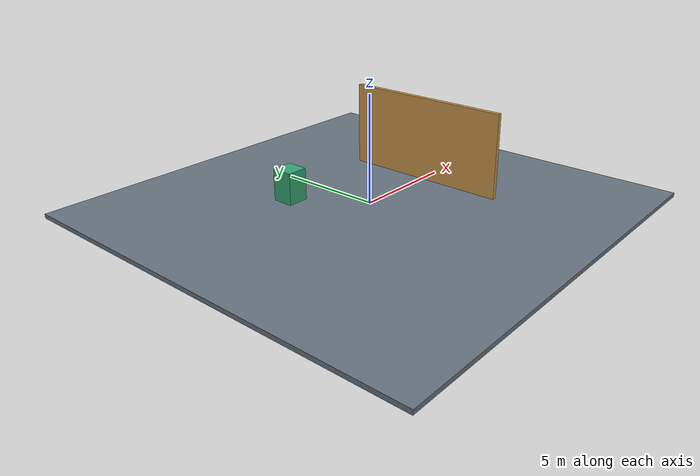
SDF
<?xml version="1.0"?>
<sdf version="1.9">
  <world name="livox_demo">
    <physics name="step" type="ignored"><max_step_size>0.001</max_step_size><real_time_factor>1</real_time_factor></physics>
    <gravity>0 0 -9.80665</gravity>
    <plugin filename="gz-sim-physics-system" name="gz::sim::systems::Physics"/>
    <plugin filename="gz-sim-user-commands-system" name="gz::sim::systems::UserCommands"/>
    <plugin filename="gz-sim-scene-broadcaster-system" name="gz::sim::systems::SceneBroadcaster"/>
    <plugin filename="gz-sim-imu-system" name="gz::sim::systems::Imu"/>
    <plugin filename="RGLServerPluginManager" name="rgl::RGLServerPluginManager">
      <do_ignore_entities_in_lidar_link>true</do_ignore_entities_in_lidar_link>
    </plugin>
    <scene><ambient>0.5 0.5 0.5 1</ambient><background>0.12 0.14 0.18 1</background></scene>
    <light name="sun" type="directional"><pose>0 0 10 0 0 0</pose><direction>-0.5 -0.3 -1</direction><diffuse>0.8 0.8 0.8 1</diffuse><cast_shadows>true</cast_shadows></light>
    <model name="floor"><static>true</static><pose>0 0 -0.1 0 0 0</pose><link name="body">
      <collision name="collision"><geometry><box><size>20 20 0.2</size></box></geometry></collision>
      <visual name="visual"><geometry><box><size>20 20 0.2</size></box></geometry><material><diffuse>0.4 0.45 0.5 1</diffuse></material><laser_retro>20</laser_retro></visual>
    </link></model>
    <model name="front_wall"><static>true</static><pose>4 0 2 0 0 0</pose><link name="body">
      <collision name="collision"><geometry><box><size>0.2 8 4</size></box></geometry></collision>
      <visual name="visual"><geometry><box><size>0.2 8 4</size></box></geometry><material><diffuse>0.8 0.6 0.3 1</diffuse></material><laser_retro>80</laser_retro></visual>
    </link></model>
    <model name="side_box"><static>true</static><pose>-2 3 0.75 0 0 0</pose><link name="body">
      <collision name="collision"><geometry><box><size>1 1 1.5</size></box></geometry></collision>
      <visual name="visual"><geometry><box><size>1 1 1.5</size></box></geometry><material><diffuse>0.2 0.65 0.45 1</diffuse></material><laser_retro>40</laser_retro></visual>
    </link></model>
  </world>
</sdf>
